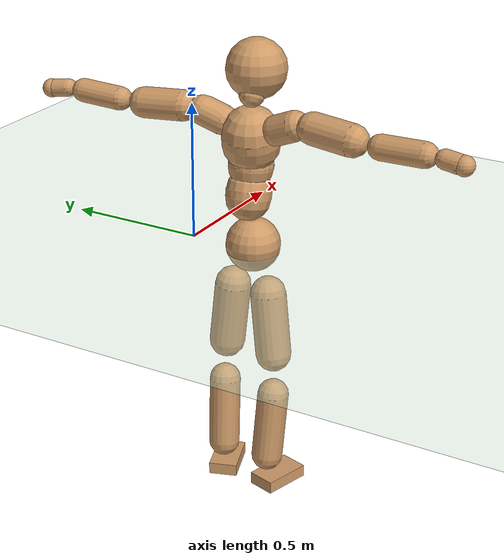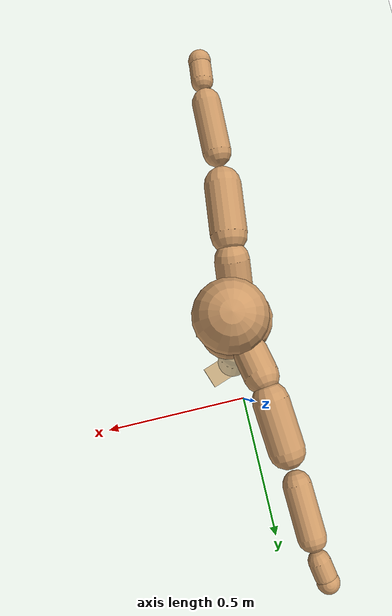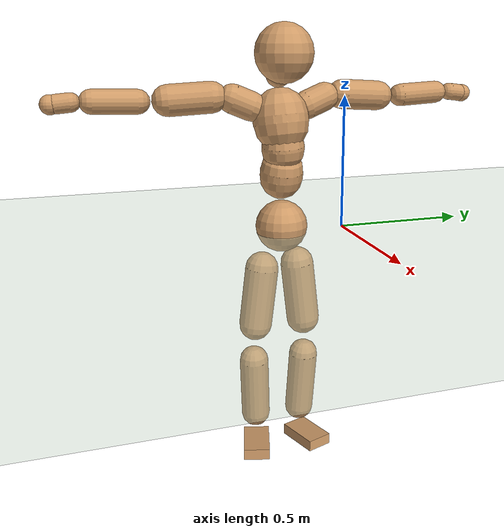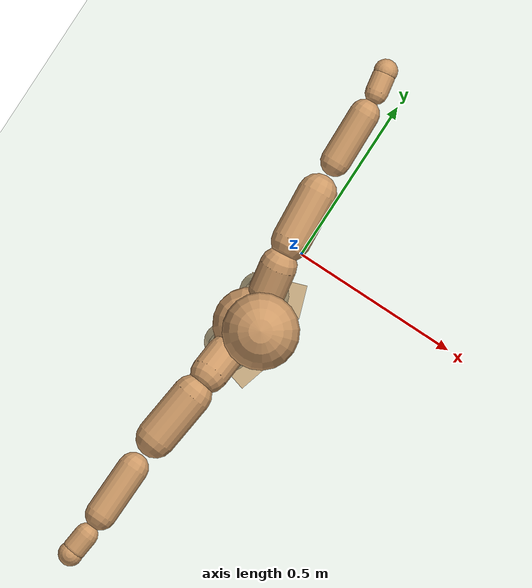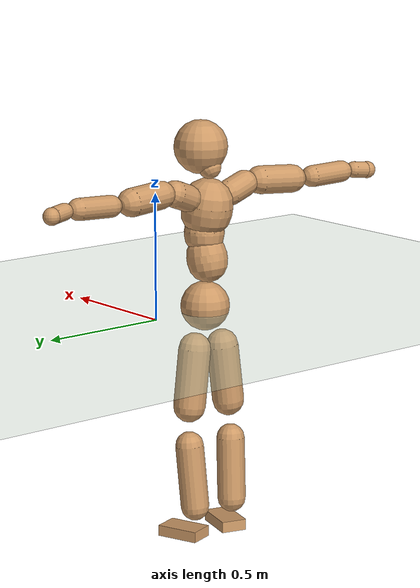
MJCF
<mujoco model="humanoid">
  <compiler coordinate="local" angle="radian"/>
  <default>
    <joint damping="0.0" armature="0.01" stiffness="0.0" limited="true"/>
    <geom conaffinity="1" condim="3" contype="7" margin="0.001" rgba="0.8 0.6 .4 1"/>
  </default>
  <asset>
    <texture type="skybox" builtin="gradient" rgb1=".4 .5 .6" rgb2="0 0 0" width="100" height="100"/>
    <texture builtin="flat" height="1278" mark="cross" markrgb="1 1 1" name="texgeom" random="0.01" rgb1="0.8 0.6 0.4" rgb2="0.8 0.6 0.4" type="cube" width="127"/>
    <texture builtin="checker" height="100" name="texplane" rgb1="0 0 0" rgb2="0.8 0.8 0.8" type="2d" width="100"/>
    <material name="MatPlane" reflectance="0.5" shininess="1" specular="1" texrepeat="60 60" texture="texplane"/>
    <material name="geom" texture="texgeom" texuniform="true"/>
  </asset>
  <worldbody>
    <light cutoff="100" diffuse="1 1 1" dir="-0 0 -1.3" directional="true" exponent="1" pos="0 0 1.3" specular=".1 .1 .1"/>
    <geom conaffinity="1" condim="3" name="floor" pos="0 0 0" rgba="0.8 0.9 0.8 1" size="100 100 .2" type="plane" material="MatPlane"/>
    <body name="Pelvis" pos="0.0002 -0.246 0.0229">
      <freejoint name="Pelvis"/>
      <geom type="sphere" contype="1" conaffinity="1" density="500" size="0.0980" pos="0.0000 0.0000 0.0000" name="Pelvis"/>
      <body name="L_Hip" pos="-0.0207 0.0614 -0.0836">
        <joint name="L_Hip_x" type="hinge" pos="0 0 0" axis="1 0 0" stiffness="800" damping="80" armature="0.02" range="-180.0000 180.0000"/>
        <joint name="L_Hip_y" type="hinge" pos="0 0 0" axis="0 1 0" stiffness="800" damping="80" armature="0.02" range="-180.0000 180.0000"/>
        <joint name="L_Hip_z" type="hinge" pos="0 0 0" axis="0 0 1" stiffness="800" damping="80" armature="0.02" range="-180.0000 180.0000"/>
        <geom type="capsule" contype="1" conaffinity="1" density="500" fromto="0.0005 0.0087 -0.0773 0.0022 0.0348 -0.3091" size="0.0641" name="L_Hip"/>
        <body name="L_Knee" pos="0.0027 0.0436 -0.3864">
          <joint name="L_Knee_x" type="hinge" pos="0 0 0" axis="1 0 0" stiffness="800" damping="80" armature="0.02" range="-180.0000 180.0000"/>
          <joint name="L_Knee_y" type="hinge" pos="0 0 0" axis="0 1 0" stiffness="800" damping="80" armature="0.02" range="-180.0000 180.0000"/>
          <joint name="L_Knee_z" type="hinge" pos="0 0 0" axis="0 0 1" stiffness="800" damping="80" armature="0.02" range="-180.0000 180.0000"/>
          <geom type="capsule" contype="1" conaffinity="1" density="500" fromto="-0.0078 -0.0028 -0.0832 -0.0313 -0.0114 -0.3329" size="0.0567" name="L_Knee"/>
          <body name="L_Ankle" pos="-0.0392 -0.0142 -0.4161">
            <joint name="L_Ankle_x" type="hinge" pos="0 0 0" axis="1 0 0" stiffness="800" damping="80" armature="0.02" range="-180.0000 180.0000"/>
            <joint name="L_Ankle_y" type="hinge" pos="0 0 0" axis="0 1 0" stiffness="800" damping="80" armature="0.02" range="-180.0000 180.0000"/>
            <joint name="L_Ankle_z" type="hinge" pos="0 0 0" axis="0 0 1" stiffness="800" damping="80" armature="0.02" range="-180.0000 180.0000"/>
            <geom type="box" contype="1" conaffinity="1" density="500" pos="0.0595 0.0205 -0.0296" size="0.0859 0.0517 0.0218" quat="0.9862 0.0000 0.0000 0.1655" name="L_Ankle"/>
            <body name="L_Toe" pos="0.119 0.0411 -0.0593">
              <joint name="L_Toe_x" type="hinge" pos="0 0 0" axis="1 0 0" stiffness="500" damping="50" armature="0.02" range="-180.0000 180.0000"/>
              <joint name="L_Toe_y" type="hinge" pos="0 0 0" axis="0 1 0" stiffness="500" damping="50" armature="0.02" range="-180.0000 180.0000"/>
              <joint name="L_Toe_z" type="hinge" pos="0 0 0" axis="0 0 1" stiffness="500" damping="50" armature="0.02" range="-180.0000 180.0000"/>
              <geom type="box" contype="1" conaffinity="1" density="500" pos="0.0000 0.0000 0.0298" size="0.001 0.0025 0.0011" quat="0.9854 0.0000 0.0000 0.1702" name="L_Toe"/>
            </body>
          </body>
        </body>
      </body>
      <body name="R_Hip" pos="-0.0173 -0.0641 -0.0911">
        <joint name="R_Hip_x" type="hinge" pos="0 0 0" axis="1 0 0" stiffness="800" damping="80" armature="0.02" range="-180.0000 180.0000"/>
        <joint name="R_Hip_y" type="hinge" pos="0 0 0" axis="0 1 0" stiffness="800" damping="80" armature="0.02" range="-180.0000 180.0000"/>
        <joint name="R_Hip_z" type="hinge" pos="0 0 0" axis="0 0 1" stiffness="800" damping="80" armature="0.02" range="-180.0000 180.0000"/>
        <geom type="capsule" contype="1" conaffinity="1" density="500" fromto="-0.0017 -0.0088 -0.0770 -0.0070 -0.0353 -0.3078" size="0.0636" name="R_Hip"/>
        <body name="R_Knee" pos="-0.0087 -0.0441 -0.3848">
          <joint name="R_Knee_x" type="hinge" pos="0 0 0" axis="1 0 0" stiffness="800" damping="80" armature="0.02" range="-180.0000 180.0000"/>
          <joint name="R_Knee_y" type="hinge" pos="0 0 0" axis="0 1 0" stiffness="800" damping="80" armature="0.02" range="-180.0000 180.0000"/>
          <joint name="R_Knee_z" type="hinge" pos="0 0 0" axis="0 0 1" stiffness="800" damping="80" armature="0.02" range="-180.0000 180.0000"/>
          <geom type="capsule" contype="1" conaffinity="1" density="500" fromto="-0.0071 0.0037 -0.0822 -0.0286 0.0149 -0.3289" size="0.0568" name="R_Knee"/>
          <body name="R_Ankle" pos="-0.0357 0.0186 -0.4111">
            <joint name="R_Ankle_x" type="hinge" pos="0 0 0" axis="1 0 0" stiffness="800" damping="80" armature="0.02" range="-180.0000 180.0000"/>
            <joint name="R_Ankle_y" type="hinge" pos="0 0 0" axis="0 1 0" stiffness="800" damping="80" armature="0.02" range="-180.0000 180.0000"/>
            <joint name="R_Ankle_z" type="hinge" pos="0 0 0" axis="0 0 1" stiffness="800" damping="80" armature="0.02" range="-180.0000 180.0000"/>
            <geom type="box" contype="1" conaffinity="1" density="500" pos="0.0632 -0.0177 -0.0314" size="0.0879 0.0517 0.0222" quat="0.9907 0.0000 0.0000 -0.1363" name="R_Ankle"/>
            <body name="R_Toe" pos="0.1265 -0.0355 -0.0627">
              <joint name="R_Toe_x" type="hinge" pos="0 0 0" axis="1 0 0" stiffness="500" damping="50" armature="0.02" range="-180.0000 180.0000"/>
              <joint name="R_Toe_y" type="hinge" pos="0 0 0" axis="0 1 0" stiffness="500" damping="50" armature="0.02" range="-180.0000 180.0000"/>
              <joint name="R_Toe_z" type="hinge" pos="0 0 0" axis="0 0 1" stiffness="500" damping="50" armature="0.02" range="-180.0000 180.0000"/>
              <geom type="box" contype="1" conaffinity="1" density="500" pos="0.0000 0.0000 0.0324" size="0.0011 0.0025 0.0012" quat="0.9919 0.0000 0.0000 -0.1271" name="R_Toe"/>
            </body>
          </body>
        </body>
      </body>
      <body name="Torso" pos="-0.0353 0.0044 0.1244">
        <joint name="Torso_x" type="hinge" pos="0 0 0" axis="1 0 0" stiffness="1000" damping="100" armature="0.02" range="-180.0000 180.0000"/>
        <joint name="Torso_y" type="hinge" pos="0 0 0" axis="0 1 0" stiffness="1000" damping="100" armature="0.02" range="-180.0000 180.0000"/>
        <joint name="Torso_z" type="hinge" pos="0 0 0" axis="0 0 1" stiffness="1000" damping="100" armature="0.02" range="-180.0000 180.0000"/>
        <geom type="capsule" contype="1" conaffinity="1" density="500" fromto="0.0181 0.0024 0.0847 0.0121 0.0016 0.0565" size="0.0804" name="Torso"/>
        <body name="Spine" pos="0.0302 0.004 0.1412">
          <joint name="Spine_x" type="hinge" pos="0 0 0" axis="1 0 0" stiffness="1000" damping="100" armature="0.02" range="-180.0000 180.0000"/>
          <joint name="Spine_y" type="hinge" pos="0 0 0" axis="0 1 0" stiffness="1000" damping="100" armature="0.02" range="-180.0000 180.0000"/>
          <joint name="Spine_z" type="hinge" pos="0 0 0" axis="0 0 1" stiffness="1000" damping="100" armature="0.02" range="-180.0000 180.0000"/>
          <geom type="capsule" contype="1" conaffinity="1" density="500" fromto="0.0022 -0.0017 0.0342 0.0015 -0.0011 0.0228" size="0.0797" name="Spine"/>
          <body name="Chest" pos="0.0037 -0.0028 0.0569">
            <joint name="Chest_x" type="hinge" pos="0 0 0" axis="1 0 0" stiffness="1000" damping="100" armature="0.02" range="-180.0000 180.0000"/>
            <joint name="Chest_y" type="hinge" pos="0 0 0" axis="0 1 0" stiffness="1000" damping="100" armature="0.02" range="-180.0000 180.0000"/>
            <joint name="Chest_z" type="hinge" pos="0 0 0" axis="0 0 1" stiffness="1000" damping="100" armature="0.02" range="-180.0000 180.0000"/>
            <geom type="capsule" contype="1" conaffinity="1" density="500" fromto="-0.0140 -0.0053 0.0876 -0.0093 -0.0036 0.0584" size="0.1026" name="Chest"/>
            <body name="Neck" pos="-0.0307 -0.0137 0.2131">
              <joint name="Neck_x" type="hinge" pos="0 0 0" axis="1 0 0" stiffness="500" damping="50" armature="0.02" range="-180.0000 180.0000"/>
              <joint name="Neck_y" type="hinge" pos="0 0 0" axis="0 1 0" stiffness="500" damping="50" armature="0.02" range="-180.0000 180.0000"/>
              <joint name="Neck_z" type="hinge" pos="0 0 0" axis="0 0 1" stiffness="500" damping="50" armature="0.02" range="-180.0000 180.0000"/>
              <geom type="capsule" contype="1" conaffinity="1" density="500" fromto="0.0111 0.0020 0.0190 0.0443 0.0081 0.0760" size="0.0456" name="Neck"/>
              <body name="Head" pos="0.0554 0.0101 0.095">
                <joint name="Head_x" type="hinge" pos="0 0 0" axis="1 0 0" stiffness="500" damping="50" armature="0.02" range="-180.0000 180.0000"/>
                <joint name="Head_y" type="hinge" pos="0 0 0" axis="0 1 0" stiffness="500" damping="50" armature="0.02" range="-180.0000 180.0000"/>
                <joint name="Head_z" type="hinge" pos="0 0 0" axis="0 0 1" stiffness="500" damping="50" armature="0.02" range="-180.0000 180.0000"/>
                <geom type="sphere" contype="1" conaffinity="1" density="500" size="0.1063" pos="0.0000 0.0000 0.0000" name="Head"/>
              </body>
            </body>
            <body name="L_Thorax" pos="-0.0171 0.0737 0.1128">
              <joint name="L_Thorax_x" type="hinge" pos="0 0 0" axis="1 0 0" stiffness="500" damping="50" armature="0.02" range="-180.0000 180.0000"/>
              <joint name="L_Thorax_y" type="hinge" pos="0 0 0" axis="0 1 0" stiffness="500" damping="50" armature="0.02" range="-180.0000 180.0000"/>
              <joint name="L_Thorax_z" type="hinge" pos="0 0 0" axis="0 0 1" stiffness="500" damping="50" armature="0.02" range="-180.0000 180.0000"/>
              <geom type="capsule" contype="1" conaffinity="1" density="500" fromto="-0.0042 0.0248 0.0092 -0.0167 0.0991 0.0369" size="0.0528" name="L_Thorax"/>
              <body name="L_Shoulder" pos="-0.0209 0.1239 0.0461">
                <joint name="L_Shoulder_x" type="hinge" pos="0 0 0" axis="1 0 0" stiffness="500" damping="50" armature="0.02" range="-720.0000 720.0000"/>
                <joint name="L_Shoulder_y" type="hinge" pos="0 0 0" axis="0 1 0" stiffness="500" damping="50" armature="0.02" range="-720.0000 720.0000"/>
                <joint name="L_Shoulder_z" type="hinge" pos="0 0 0" axis="0 0 1" stiffness="500" damping="50" armature="0.02" range="-720.0000 720.0000"/>
                <geom type="capsule" contype="1" conaffinity="1" density="500" fromto="-0.0040 0.0501 -0.0032 -0.0161 0.2004 -0.0129" size="0.0551" name="L_Shoulder"/>
                <body name="L_Elbow" pos="-0.0202 0.2505 -0.0161">
                  <joint name="L_Elbow_x" type="hinge" pos="0 0 0" axis="1 0 0" stiffness="500" damping="50" armature="0.02" range="-720.0000 720.0000"/>
                  <joint name="L_Elbow_y" type="hinge" pos="0 0 0" axis="0 1 0" stiffness="500" damping="50" armature="0.02" range="-720.0000 720.0000"/>
                  <joint name="L_Elbow_z" type="hinge" pos="0 0 0" axis="0 0 1" stiffness="500" damping="50" armature="0.02" range="-720.0000 720.0000"/>
                  <geom type="capsule" contype="1" conaffinity="1" density="500" fromto="-0.0015 0.0506 0.0024 -0.0061 0.2022 0.0096" size="0.0424" name="L_Elbow"/>
                  <body name="L_Wrist" pos="-0.0076 0.2528 0.012">
                    <joint name="L_Wrist_x" type="hinge" pos="0 0 0" axis="1 0 0" stiffness="300" damping="30" armature="0.02" range="-180.0000 180.0000"/>
                    <joint name="L_Wrist_y" type="hinge" pos="0 0 0" axis="0 1 0" stiffness="300" damping="30" armature="0.02" range="-180.0000 180.0000"/>
                    <joint name="L_Wrist_z" type="hinge" pos="0 0 0" axis="0 0 1" stiffness="300" damping="30" armature="0.02" range="-180.0000 180.0000"/>
                    <geom type="capsule" contype="1" conaffinity="1" density="500" fromto="-0.0029 0.0162 -0.0020 -0.0115 0.0648 -0.0082" size="0.0324" name="L_Wrist"/>
                    <body name="L_Hand" pos="-0.0144 0.081 -0.0102">
                      <joint name="L_Hand_x" type="hinge" pos="0 0 0" axis="1 0 0" stiffness="300" damping="30" armature="0.02" range="-180.0000 180.0000"/>
                      <joint name="L_Hand_y" type="hinge" pos="0 0 0" axis="0 1 0" stiffness="300" damping="30" armature="0.02" range="-180.0000 180.0000"/>
                      <joint name="L_Hand_z" type="hinge" pos="0 0 0" axis="0 0 1" stiffness="300" damping="30" armature="0.02" range="-180.0000 180.0000"/>
                      <geom type="sphere" contype="1" conaffinity="1" density="500" size="0.0335" pos="0.0000 0.0000 0.0000" name="L_Hand"/>
                    </body>
                  </body>
                </body>
              </body>
            </body>
            <body name="R_Thorax" pos="-0.0222 -0.0868 0.1123">
              <joint name="R_Thorax_x" type="hinge" pos="0 0 0" axis="1 0 0" stiffness="500" damping="50" armature="0.02" range="-180.0000 180.0000"/>
              <joint name="R_Thorax_y" type="hinge" pos="0 0 0" axis="0 1 0" stiffness="500" damping="50" armature="0.02" range="-180.0000 180.0000"/>
              <joint name="R_Thorax_z" type="hinge" pos="0 0 0" axis="0 0 1" stiffness="500" damping="50" armature="0.02" range="-180.0000 180.0000"/>
              <geom type="capsule" contype="1" conaffinity="1" density="500" fromto="-0.0019 -0.0232 0.0097 -0.0077 -0.0927 0.0387" size="0.0532" name="R_Thorax"/>
              <body name="R_Shoulder" pos="-0.0097 -0.1158 0.0483">
                <joint name="R_Shoulder_x" type="hinge" pos="0 0 0" axis="1 0 0" stiffness="500" damping="50" armature="0.02" range="-720.0000 720.0000"/>
                <joint name="R_Shoulder_y" type="hinge" pos="0 0 0" axis="0 1 0" stiffness="500" damping="50" armature="0.02" range="-720.0000 720.0000"/>
                <joint name="R_Shoulder_z" type="hinge" pos="0 0 0" axis="0 0 1" stiffness="500" damping="50" armature="0.02" range="-720.0000 720.0000"/>
                <geom type="capsule" contype="1" conaffinity="1" density="500" fromto="-0.0060 -0.0511 -0.0030 -0.0241 -0.2042 -0.0119" size="0.0563" name="R_Shoulder"/>
                <body name="R_Elbow" pos="-0.0301 -0.2553 -0.0148">
                  <joint name="R_Elbow_x" type="hinge" pos="0 0 0" axis="1 0 0" stiffness="500" damping="50" armature="0.02" range="-720.0000 720.0000"/>
                  <joint name="R_Elbow_y" type="hinge" pos="0 0 0" axis="0 1 0" stiffness="500" damping="50" armature="0.02" range="-720.0000 720.0000"/>
                  <joint name="R_Elbow_z" type="hinge" pos="0 0 0" axis="0 0 1" stiffness="500" damping="50" armature="0.02" range="-720.0000 720.0000"/>
                  <geom type="capsule" contype="1" conaffinity="1" density="500" fromto="-0.0013 -0.0518 0.0012 -0.0051 -0.2073 0.0050" size="0.0436" name="R_Elbow"/>
                  <body name="R_Wrist" pos="-0.0064 -0.2592 0.0062">
                    <joint name="R_Wrist_x" type="hinge" pos="0 0 0" axis="1 0 0" stiffness="300" damping="30" armature="0.02" range="-180.0000 180.0000"/>
                    <joint name="R_Wrist_y" type="hinge" pos="0 0 0" axis="0 1 0" stiffness="300" damping="30" armature="0.02" range="-180.0000 180.0000"/>
                    <joint name="R_Wrist_z" type="hinge" pos="0 0 0" axis="0 0 1" stiffness="300" damping="30" armature="0.02" range="-180.0000 180.0000"/>
                    <geom type="capsule" contype="1" conaffinity="1" density="500" fromto="-0.0019 -0.0169 -0.0017 -0.0076 -0.0675 -0.0066" size="0.0335" name="R_Wrist"/>
                    <body name="R_Hand" pos="-0.0094 -0.0844 -0.0083">
                      <joint name="R_Hand_x" type="hinge" pos="0 0 0" axis="1 0 0" stiffness="300" damping="30" armature="0.02" range="-180.0000 180.0000"/>
                      <joint name="R_Hand_y" type="hinge" pos="0 0 0" axis="0 1 0" stiffness="300" damping="30" armature="0.02" range="-180.0000 180.0000"/>
                      <joint name="R_Hand_z" type="hinge" pos="0 0 0" axis="0 0 1" stiffness="300" damping="30" armature="0.02" range="-180.0000 180.0000"/>
                      <geom type="sphere" contype="1" conaffinity="1" density="500" size="0.0345" pos="0.0000 0.0000 0.0000" name="R_Hand"/>
                    </body>
                  </body>
                </body>
              </body>
            </body>
          </body>
        </body>
      </body>
    </body>
  </worldbody>
  <actuator>
    <motor name="L_Hip_x" joint="L_Hip_x" gear="500"/>
    <motor name="L_Hip_y" joint="L_Hip_y" gear="500"/>
    <motor name="L_Hip_z" joint="L_Hip_z" gear="500"/>
    <motor name="L_Knee_x" joint="L_Knee_x" gear="500"/>
    <motor name="L_Knee_y" joint="L_Knee_y" gear="500"/>
    <motor name="L_Knee_z" joint="L_Knee_z" gear="500"/>
    <motor name="L_Ankle_x" joint="L_Ankle_x" gear="500"/>
    <motor name="L_Ankle_y" joint="L_Ankle_y" gear="500"/>
    <motor name="L_Ankle_z" joint="L_Ankle_z" gear="500"/>
    <motor name="L_Toe_x" joint="L_Toe_x" gear="500"/>
    <motor name="L_Toe_y" joint="L_Toe_y" gear="500"/>
    <motor name="L_Toe_z" joint="L_Toe_z" gear="500"/>
    <motor name="R_Hip_x" joint="R_Hip_x" gear="500"/>
    <motor name="R_Hip_y" joint="R_Hip_y" gear="500"/>
    <motor name="R_Hip_z" joint="R_Hip_z" gear="500"/>
    <motor name="R_Knee_x" joint="R_Knee_x" gear="500"/>
    <motor name="R_Knee_y" joint="R_Knee_y" gear="500"/>
    <motor name="R_Knee_z" joint="R_Knee_z" gear="500"/>
    <motor name="R_Ankle_x" joint="R_Ankle_x" gear="500"/>
    <motor name="R_Ankle_y" joint="R_Ankle_y" gear="500"/>
    <motor name="R_Ankle_z" joint="R_Ankle_z" gear="500"/>
    <motor name="R_Toe_x" joint="R_Toe_x" gear="500"/>
    <motor name="R_Toe_y" joint="R_Toe_y" gear="500"/>
    <motor name="R_Toe_z" joint="R_Toe_z" gear="500"/>
    <motor name="Torso_x" joint="Torso_x" gear="500"/>
    <motor name="Torso_y" joint="Torso_y" gear="500"/>
    <motor name="Torso_z" joint="Torso_z" gear="500"/>
    <motor name="Spine_x" joint="Spine_x" gear="500"/>
    <motor name="Spine_y" joint="Spine_y" gear="500"/>
    <motor name="Spine_z" joint="Spine_z" gear="500"/>
    <motor name="Chest_x" joint="Chest_x" gear="500"/>
    <motor name="Chest_y" joint="Chest_y" gear="500"/>
    <motor name="Chest_z" joint="Chest_z" gear="500"/>
    <motor name="Neck_x" joint="Neck_x" gear="500"/>
    <motor name="Neck_y" joint="Neck_y" gear="500"/>
    <motor name="Neck_z" joint="Neck_z" gear="500"/>
    <motor name="Head_x" joint="Head_x" gear="500"/>
    <motor name="Head_y" joint="Head_y" gear="500"/>
    <motor name="Head_z" joint="Head_z" gear="500"/>
    <motor name="L_Thorax_x" joint="L_Thorax_x" gear="500"/>
    <motor name="L_Thorax_y" joint="L_Thorax_y" gear="500"/>
    <motor name="L_Thorax_z" joint="L_Thorax_z" gear="500"/>
    <motor name="L_Shoulder_x" joint="L_Shoulder_x" gear="500"/>
    <motor name="L_Shoulder_y" joint="L_Shoulder_y" gear="500"/>
    <motor name="L_Shoulder_z" joint="L_Shoulder_z" gear="500"/>
    <motor name="L_Elbow_x" joint="L_Elbow_x" gear="500"/>
    <motor name="L_Elbow_y" joint="L_Elbow_y" gear="500"/>
    <motor name="L_Elbow_z" joint="L_Elbow_z" gear="500"/>
    <motor name="L_Wrist_x" joint="L_Wrist_x" gear="500"/>
    <motor name="L_Wrist_y" joint="L_Wrist_y" gear="500"/>
    <motor name="L_Wrist_z" joint="L_Wrist_z" gear="500"/>
    <motor name="L_Hand_x" joint="L_Hand_x" gear="500"/>
    <motor name="L_Hand_y" joint="L_Hand_y" gear="500"/>
    <motor name="L_Hand_z" joint="L_Hand_z" gear="500"/>
    <motor name="R_Thorax_x" joint="R_Thorax_x" gear="500"/>
    <motor name="R_Thorax_y" joint="R_Thorax_y" gear="500"/>
    <motor name="R_Thorax_z" joint="R_Thorax_z" gear="500"/>
    <motor name="R_Shoulder_x" joint="R_Shoulder_x" gear="500"/>
    <motor name="R_Shoulder_y" joint="R_Shoulder_y" gear="500"/>
    <motor name="R_Shoulder_z" joint="R_Shoulder_z" gear="500"/>
    <motor name="R_Elbow_x" joint="R_Elbow_x" gear="500"/>
    <motor name="R_Elbow_y" joint="R_Elbow_y" gear="500"/>
    <motor name="R_Elbow_z" joint="R_Elbow_z" gear="500"/>
    <motor name="R_Wrist_x" joint="R_Wrist_x" gear="500"/>
    <motor name="R_Wrist_y" joint="R_Wrist_y" gear="500"/>
    <motor name="R_Wrist_z" joint="R_Wrist_z" gear="500"/>
    <motor name="R_Hand_x" joint="R_Hand_x" gear="500"/>
    <motor name="R_Hand_y" joint="R_Hand_y" gear="500"/>
    <motor name="R_Hand_z" joint="R_Hand_z" gear="500"/>
  </actuator>
  <contact>
    <exclude body1="Torso" body2="Chest"/>
    <exclude body1="Head" body2="Chest"/>
    <exclude body1="R_Knee" body2="R_Toe"/>
    <exclude body1="R_Knee" body2="L_Ankle"/>
    <exclude body1="R_Knee" body2="L_Toe"/>
    <exclude body1="L_Knee" body2="L_Toe"/>
    <exclude body1="L_Knee" body2="R_Ankle"/>
    <exclude body1="L_Knee" body2="R_Toe"/>
    <exclude body1="L_Shoulder" body2="Chest"/>
    <exclude body1="R_Shoulder" body2="Chest"/>
  </contact>
  <sensor/>
  <size njmax="700" nconmax="700"/>
</mujoco>
